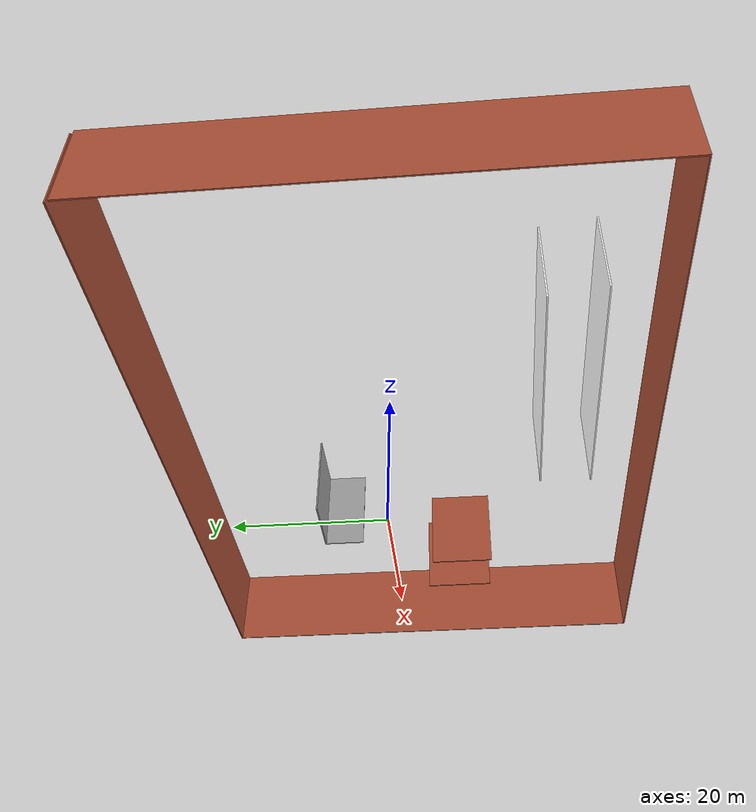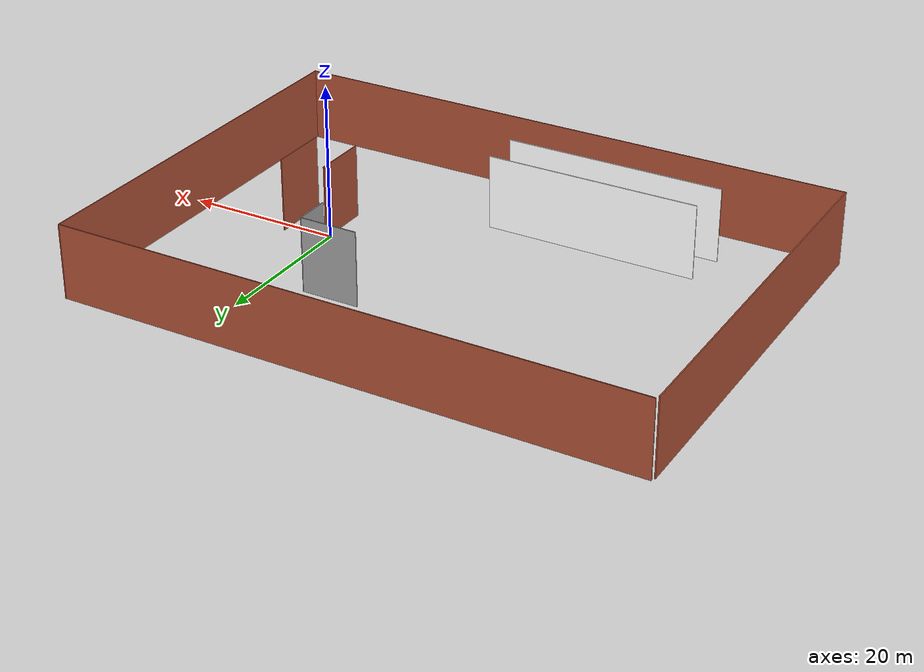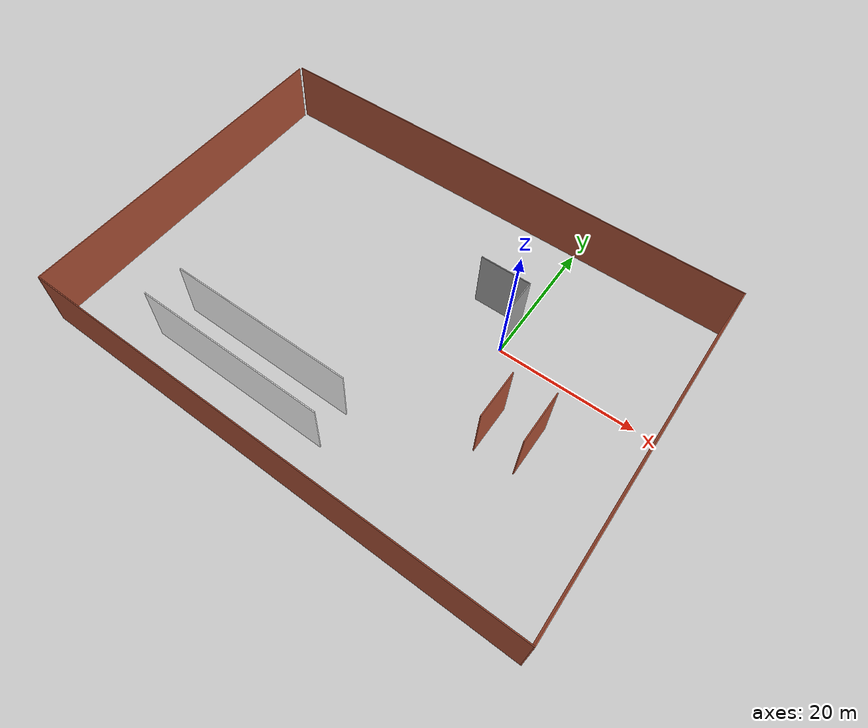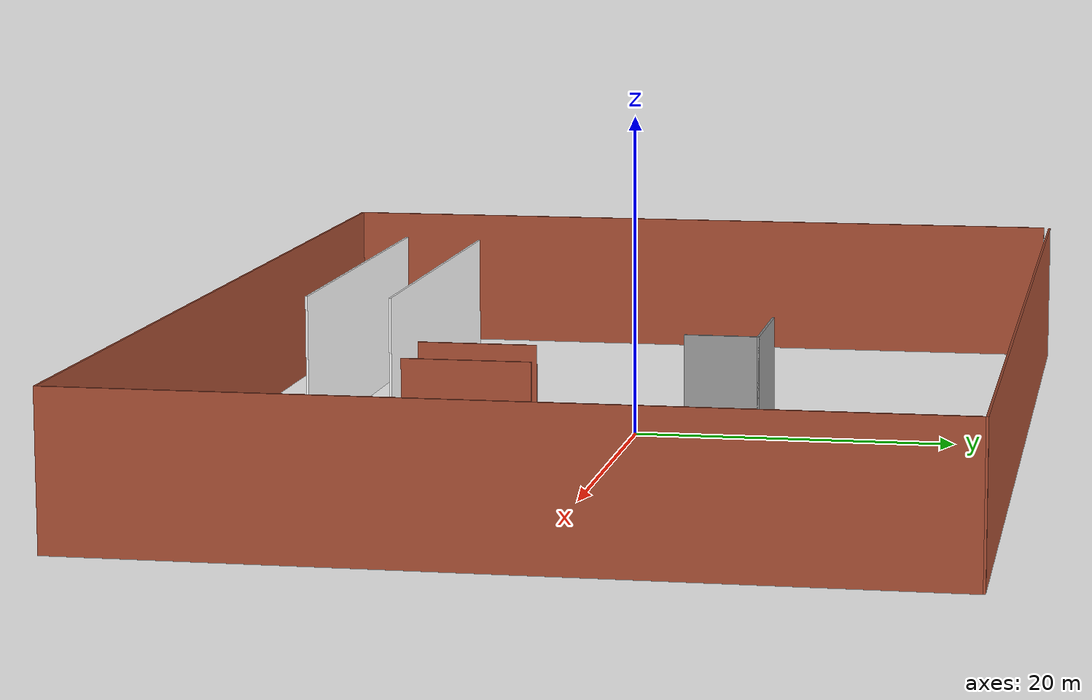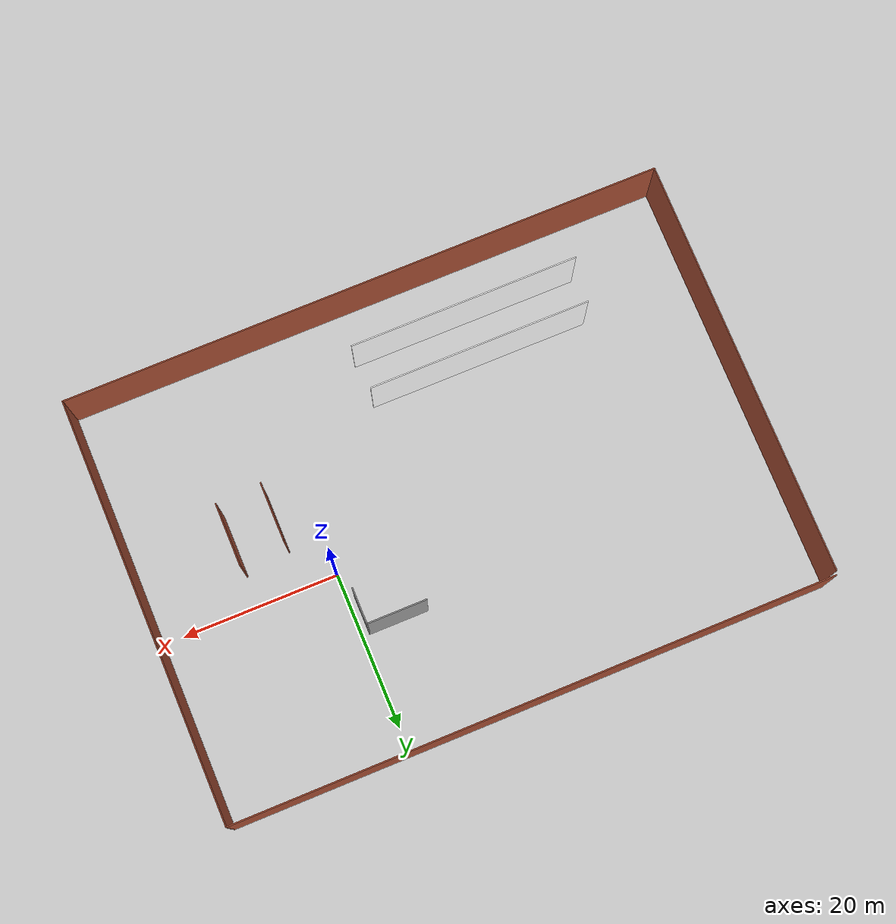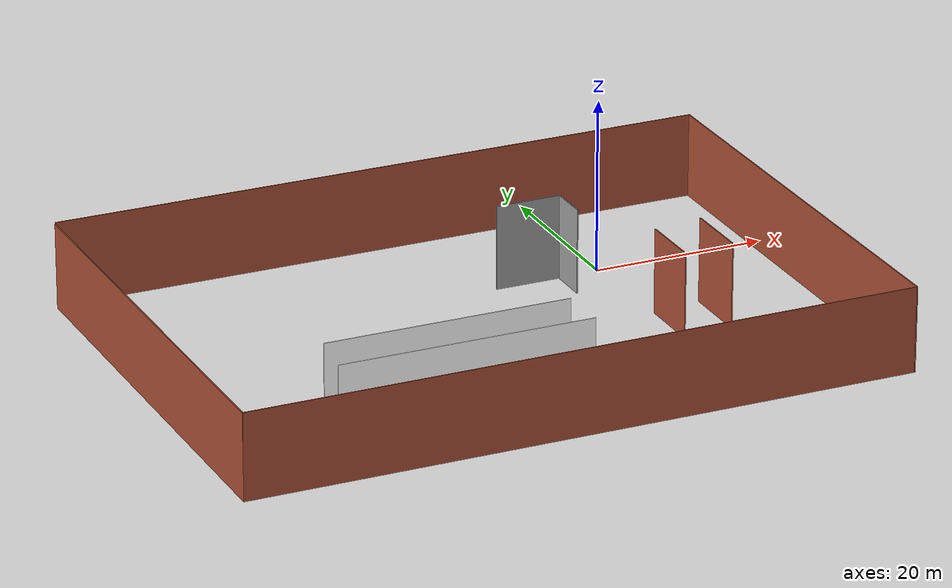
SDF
<?xml version='1.0'?>
<sdf version='1.6'>
  <model name='jypro_simulation_wall'>
    <pose frame=''>-15.9628 -3.9327 0 0 -0 0</pose>
    <link name='Wall_0'>
      <collision name='Wall_0_Collision'>
        <geometry>
          <box>
            <size>54.25 0.15 10</size>
          </box>
        </geometry>
        <pose frame=''>0 0 1.25 0 -0 0</pose>
      </collision>
      <visual name='Wall_0_Visual'>
        <pose frame=''>0 0 1.25 0 -0 0</pose>
        <geometry>
          <box>
            <size>54.25 0.15 10</size>
          </box>
        </geometry>
        <material>
          <script>
            <uri>file://media/materials/scripts/gazebo.material</uri>
            <name>Gazebo/Bricks</name>
          </script>
          <ambient>1 1 1 1</ambient>
        </material>
        <meta>
          <layer>0</layer>
        </meta>
      </visual>
      <pose frame=''>-38.8 -0.25 0 0 -0 -1.5708</pose>
    </link>
    <link name='Wall_1'>
      <collision name='Wall_1_Collision'>
        <geometry>
          <box>
            <size>77.75 0.15 10</size>
          </box>
        </geometry>
        <pose frame=''>0 0 1.25 0 -0 0</pose>
      </collision>
      <visual name='Wall_1_Visual'>
        <pose frame=''>0 0 1.25 0 -0 0</pose>
        <geometry>
          <box>
            <size>77.75 0.15 10</size>
          </box>
        </geometry>
        <material>
          <script>
            <uri>file://media/materials/scripts/gazebo.material</uri>
            <name>Gazebo/Bricks</name>
          </script>
          <ambient>1 1 1 1</ambient>
        </material>
        <meta>
          <layer>0</layer>
        </meta>
      </visual>
      <pose frame=''>1e-06 -27.3 0 0 -0 0</pose>
    </link>
    <link name='Wall_11'>
      <collision name='Wall_11_Collision'>
        <geometry>
          <box>
            <size>8 0.15 10</size>
          </box>
        </geometry>
        <pose frame=''>0 0 1.25 0 -0 0</pose>
      </collision>
      <visual name='Wall_11_Visual'>
        <pose frame=''>0 0 1.25 0 -0 0</pose>
        <geometry>
          <box>
            <size>8 0.15 10</size>
          </box>
        </geometry>
        <material>
          <script>
            <uri>file://media/materials/scripts/gazebo.material</uri>
            <name>Gazebo/Bricks</name>
          </script>
          <ambient>1 1 1 1</ambient>
        </material>
        <meta>
          <layer>0</layer>
        </meta>
      </visual>
      <pose frame=''>26.267 -4.6651 0 0 -0 1.5708</pose>
    </link>
    <link name='Wall_13'>
      <collision name='Wall_13_Collision'>
        <geometry>
          <box>
            <size>7.75 0.15 10</size>
          </box>
        </geometry>
        <pose frame=''>0 0 1.25 0 -0 0</pose>
      </collision>
      <visual name='Wall_13_Visual'>
        <pose frame=''>0 0 1.25 0 -0 0</pose>
        <geometry>
          <box>
            <size>7.75 0.15 10</size>
          </box>
        </geometry>
        <material>
          <script>
            <uri>file://media/materials/scripts/gazebo.material</uri>
            <name>Gazebo/Grey</name>
          </script>
          <ambient>1 1 1 1</ambient>
        </material>
        <meta>
          <layer>0</layer>
        </meta>
      </visual>
      <pose frame=''>11.1817 11.5648 0 0 -0 0</pose>
    </link>
    <link name='Wall_14'>
      <collision name='Wall_14_Collision'>
        <geometry>
          <box>
            <size>4.75 0.15 10</size>
          </box>
        </geometry>
        <pose frame=''>0 0 1.25 0 -0 0</pose>
      </collision>
      <visual name='Wall_14_Visual'>
        <pose frame=''>0 0 1.25 0 -0 0</pose>
        <geometry>
          <box>
            <size>4.75 0.15 10</size>
          </box>
        </geometry>
        <material>
          <script>
            <uri>file://media/materials/scripts/gazebo.material</uri>
            <name>Gazebo/Grey</name>
          </script>
          <ambient>1 1 1 1</ambient>
        </material>
        <meta>
          <layer>0</layer>
        </meta>
      </visual>
      <pose frame=''>14.9817 9.2648 0 0 -0 -1.5708</pose>
    </link>
    <link name='Wall_2'>
      <collision name='Wall_2_Collision'>
        <geometry>
          <box>
            <size>54.75 0.15 10</size>
          </box>
        </geometry>
        <pose frame=''>0 0 1.25 0 -0 0</pose>
      </collision>
      <visual name='Wall_2_Visual'>
        <pose frame=''>0 0 1.25 0 -0 0</pose>
        <geometry>
          <box>
            <size>54.75 0.15 10</size>
          </box>
        </geometry>
        <material>
          <script>
            <uri>file://media/materials/scripts/gazebo.material</uri>
            <name>Gazebo/Bricks</name>
          </script>
          <ambient>1 1 1 1</ambient>
        </material>
        <meta>
          <layer>0</layer>
        </meta>
      </visual>
      <pose frame=''>38.8 -0 0 0 -0 1.5708</pose>
    </link>
    <link name='Wall_3'>
      <collision name='Wall_3_Collision'>
        <geometry>
          <box>
            <size>77.5 0.15 10</size>
          </box>
        </geometry>
        <pose frame=''>0 0 1.25 0 -0 0</pose>
      </collision>
      <visual name='Wall_3_Visual'>
        <pose frame=''>0 0 1.25 0 -0 0</pose>
        <geometry>
          <box>
            <size>77.5 0.15 10</size>
          </box>
        </geometry>
        <material>
          <script>
            <uri>file://media/materials/scripts/gazebo.material</uri>
            <name>Gazebo/Bricks</name>
          </script>
          <ambient>1 1 1 1</ambient>
        </material>
        <meta>
          <layer>0</layer>
        </meta>
      </visual>
      <pose frame=''>0.125001 27.3 0 0 -0 3.14159</pose>
    </link>
    <link name='Wall_5'>
      <collision name='Wall_5_Collision'>
        <geometry>
          <box>
            <size>29.5 0.15 10</size>
          </box>
        </geometry>
        <pose frame=''>0 0 1.25 0 -0 0</pose>
      </collision>
      <visual name='Wall_5_Visual'>
        <pose frame=''>0 0 1.25 0 -0 0</pose>
        <geometry>
          <box>
            <size>29.5 0.15 10</size>
          </box>
        </geometry>
        <material>
          <script>
            <uri>/home/dqwang/MPC_WBC_sim/catkin_ws/src/Jueying_description/JYPro/meshes/wall_5/materials/scripts</uri>
            <uri>/home/dqwang/MPC_WBC_sim/catkin_ws/src/Jueying_description/JYPro/meshes/wall_5/materials/textures/</uri>
            <name>wall_5/Image</name>
          </script>
          <ambient>1 1 1 1</ambient>
        </material>
        <meta>
          <layer>0</layer>
        </meta>
      </visual>
      <pose frame=''>-10.6355 -20.4926 0 0 -0 0</pose>
    </link>
    <link name='Wall_7'>
      <collision name='Wall_7_Collision'>
        <geometry>
          <box>
            <size>28.5 0.15 10</size>
          </box>
        </geometry>
        <pose frame=''>0 0 1.25 0 -0 0</pose>
      </collision>
      <visual name='Wall_7_Visual'>
        <pose frame=''>0 0 1.25 0 -0 0</pose>
        <geometry>
          <box>
            <size>28.5 0.15 10</size>
          </box>
        </geometry>
        <material>
          <script>
              <uri>/home/dqwang/MPC_WBC_sim/catkin_ws/src/Jueying_description/JYPro/meshes/wall_7/materials/scripts</uri>
              <uri>/home/dqwang/MPC_WBC_sim/catkin_ws/src/Jueying_description/JYPro/meshes/wall_7/materials/textures/</uri>
              <name>wall7/Image</name>
            </script>
          <ambient>1 1 1 1</ambient>
        </material>
        <meta>
          <layer>0</layer>
        </meta>
      </visual>
      <pose frame=''>-10.342 -14.7794 0 0 -0 0</pose>
    </link>
    <link name='Wall_9'>
      <collision name='Wall_9_Collision'>
        <geometry>
          <box>
            <size>7.5 0.15 10</size>
          </box>
        </geometry>
        <pose frame=''>0 0 1.25 0 -0 0</pose>
      </collision>
      <visual name='Wall_9_Visual'>
        <pose frame=''>0 0 1.25 0 -0 0</pose>
        <geometry>
          <box>
            <size>7.5 0.15 10</size>
          </box>
        </geometry>
        <material>
          <script>
            <uri>file://media/materials/scripts/gazebo.material</uri>
            <name>Gazebo/Bricks</name>
          </script>
          <ambient>1 1 1 1</ambient>
        </material>
        <meta>
          <layer>0</layer>
        </meta>
      </visual>
      <pose frame=''>20.3951 -5.2325 0 0 -0 1.5708</pose>
    </link>
    <static>1</static>
  </model>
</sdf>
